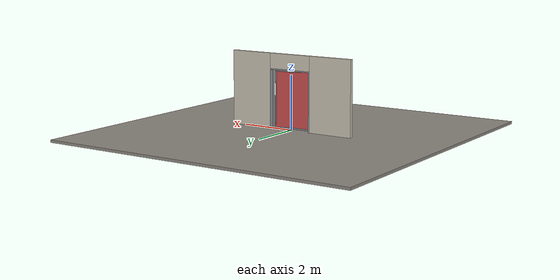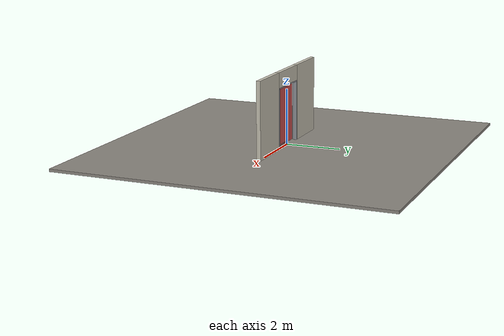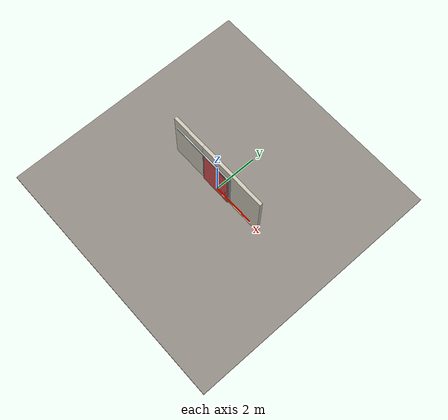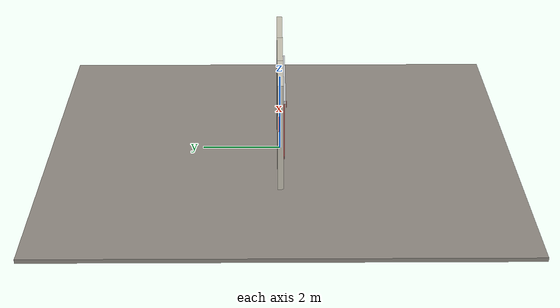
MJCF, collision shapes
<?xml version="1.0" ?>
<mujoco model="db0581_sliding_single_full">
  <compiler angle="radian" meshdir="../../hardware" texturedir="../../textures" autolimits="true" inertiafromgeom="false"/>
  <option timestep="0.002" integrator="implicitfast" cone="elliptic" impratio="10" noslip_iterations="3">
    <flag multiccd="enable"/>
  </option>
  <size memory="16M"/>
  <default>
    <geom condim="4" solref="0.005 1" solimp="0.95 0.99 0.001"/>
    <joint solreflimit="0.005 1" solimplimit="0.95 0.99 0.001"/>
    <tendon solreflimit="0.005 1"/>
    <equality solref="0.002 1"/>
  </default>
  <visual>
    <headlight ambient="0.4 0.4 0.4" diffuse="0.7 0.7 0.7" specular="0.2 0.2 0.2"/>
    <quality shadowsize="4096"/>
    <map znear="0.01" zfar="60"/>
  </visual>
  <asset>
    <mesh name="pull_1e5d69a91a" file="pull_1e5d69a91a.obj"/>
    <material name="mat_floor" rgba="0.55 0.53 0.5 1" specular="0.2" shininess="0.15" reflectance="0"/>
    <material name="mat_wall" rgba="0.78 0.76 0.7 1" specular="0.2" shininess="0.1" reflectance="0"/>
    <material name="mat_frame" rgba="0.55 0.56 0.58 1" specular="0.8" shininess="0.55" reflectance="0.4"/>
    <material name="mat_track" rgba="0.8 0.81 0.83 1" specular="0.8" shininess="0.6" reflectance="0.4"/>
    <material name="mat_leaf" rgba="0.5 0.51 0.53 1" specular="0.23" shininess="0.52" reflectance="0.02"/>
    <material name="mat_roller" rgba="0.65 0.66 0.68 1" specular="0.74" shininess="0.5" reflectance="0.36"/>
    <material name="mat_op_stainless" rgba="0.75 0.76 0.77 1" specular="0.8" shininess="0.65" reflectance="0.4"/>
    <material name="mat_hook" rgba="0.75 0.76 0.77 1" specular="0.8" shininess="0.65" reflectance="0.4"/>
    <texture name="skybox" type="skybox" builtin="gradient" rgb1="0.6 0.7 0.85" rgb2="0.9 0.92 0.95" width="256" height="256"/>
  </asset>
  <worldbody>
    <light name="sun" pos="1.5 -2.5 4" dir="-0.3 0.5 -0.8" directional="true" diffuse="0.8 0.8 0.8" specular="0.3 0.3 0.3" castshadow="true"/>
    <light name="fill" pos="-1.5 2.5 3" dir="0.3 -0.5 -0.7" directional="true" diffuse="0.35 0.35 0.4" castshadow="false"/>
    <camera name="robot_view" pos="0 -2.644375 1.817425" xyaxes="1 0 0 0 0.26963 0.962964" fovy="52"/>
    <camera name="far_view" pos="0 2.644375 1.817425" xyaxes="-1 0 0 0 -0.26963 0.962964" fovy="52"/>
    <camera name="iso" pos="2.009725 -2.221275 2.240525" xyaxes="0.741536 0.670913 0 -0.242917 0.268487 0.932151" fovy="46"/>
    <camera name="detail_handle" pos="0.84 -0.9775 1.23" xyaxes="0.97561 0.219512 0 -0.070934 0.315262 0.94635" fovy="38"/>
    <geom name="floor" type="box" size="6 6 0.05" pos="0 0 -0.05" material="mat_floor" group="0" contype="1" conaffinity="1" friction="0.8 0.005 0.0001" density="2400"/>
    <geom name="wall_left" type="box" size="0.8475 0.0725 1.377" pos="-1.6525 0 1.377" material="mat_wall" group="0" contype="1" conaffinity="1" friction="0.6 0.005 0.0001" density="800"/>
    <geom name="wall_right" type="box" size="0.8175 0.0725 1.377" pos="1.6825 0 1.377" material="mat_wall" group="0" contype="1" conaffinity="1" friction="0.6 0.005 0.0001" density="800"/>
    <geom name="wall_header" type="box" size="0.835 0.0725 0.2775" pos="0.03 0 2.4765" material="mat_wall" group="0" contype="1" conaffinity="1" friction="0.6 0.005 0.0001" density="800"/>
    <geom name="jamb_l" type="box" size="0.0225 0.0725 1.077" pos="-0.7825 0 1.077" material="mat_frame" group="0" contype="1" conaffinity="1" friction="0.6 0.005 0.0001" density="300"/>
    <geom name="jamb_head" type="box" size="0.805 0.0725 0.0225" pos="0 0 2.1765" material="mat_frame" group="0" contype="1" conaffinity="1" friction="0.6 0.005 0.0001" density="300"/>
    <geom name="track_header" type="box" size="1.55 0.025 0.04" pos="-0.75 -0.105 2.239" material="mat_track" group="0" contype="1" conaffinity="1" friction="0.6 0.005 0.0001" density="2700"/>
    <geom name="jamb_latch_0" type="box" size="0.0525 0.0725 1.077" pos="0.8125 0 1.077" material="mat_frame" group="0" contype="1" conaffinity="1" friction="0.6 0.005 0.0001" density="300"/>
    <geom name="track_header_bracket" type="box" size="1.24 0.00425 0.032" pos="-0.75 -0.07625 2.239" material="mat_hook" group="1" contype="0" conaffinity="0" density="7850"/>
    <site name="approach_point" pos="0 -1.5 0" quat="1 0 0 0" size="0.05" rgba="0.2 0.9 0.2 0.5" group="4"/>
    <site name="goal_point" pos="0 1.5 0" quat="1 0 0 0" size="0.05" rgba="0.2 0.9 0.2 0.5" group="4"/>
    <site name="door_plane_center" pos="0 0 1.077" quat="1 0 0 0" size="0.02" rgba="0.2 0.9 0.2 0.5" group="4"/>
    <body name="leaf" pos="0 -0.105 0">
      <inertial pos="0.00212 -0.000202 1.084694" mass="139.383325" quat="0.500212 0.500527 0.499437 -0.499823" diaginertia="26.422865583 53.348945549 79.753553749"/>
      <joint name="leaf_slide" type="slide" axis="-1 0 0" limited="true" range="0 1.5" damping="8.969166" frictionloss="27.33767" armature="0.5"/>
      <geom name="leaf_slab_col" type="box" size="0.75 0.0125 1.067" pos="0 0 1.079" material="mat_leaf" group="3" contype="1" conaffinity="1" rgba="0.8 0.3 0.3 0.25" friction="0.45 0.005 0.0001" density="1"/>
      <geom name="leaf_rail_b" type="box" size="0.75 0.0125 0.03" pos="0 0 0.042" material="mat_leaf" group="1" contype="0" conaffinity="0" density="1"/>
      <geom name="leaf_rail_t" type="box" size="0.75 0.0125 0.03" pos="0 0 2.116" material="mat_leaf" group="1" contype="0" conaffinity="0" density="1"/>
      <geom name="leaf_stile_h" type="box" size="0.03 0.0125 1.067" pos="-0.72 0 1.079" material="mat_leaf" group="1" contype="0" conaffinity="0" density="1"/>
      <geom name="leaf_stile_l" type="box" size="0.03 0.0125 1.067" pos="0.72 0 1.079" material="mat_leaf" group="1" contype="0" conaffinity="0" density="1"/>
      <geom name="leaf_bar_0" type="cylinder" size="0.0095 1.007" pos="-0.621 0 1.079" material="mat_leaf" group="1" contype="0" conaffinity="0" density="1"/>
      <geom name="leaf_bar_1" type="cylinder" size="0.0095 1.007" pos="-0.483 0 1.079" material="mat_leaf" group="1" contype="0" conaffinity="0" density="1"/>
      <geom name="leaf_bar_2" type="cylinder" size="0.0095 1.007" pos="-0.345 0 1.079" material="mat_leaf" group="1" contype="0" conaffinity="0" density="1"/>
      <geom name="leaf_bar_3" type="cylinder" size="0.0095 1.007" pos="-0.207 0 1.079" material="mat_leaf" group="1" contype="0" conaffinity="0" density="1"/>
      <geom name="leaf_bar_4" type="cylinder" size="0.0095 1.007" pos="-0.069 0 1.079" material="mat_leaf" group="1" contype="0" conaffinity="0" density="1"/>
      <geom name="leaf_bar_5" type="cylinder" size="0.0095 1.007" pos="0.069 0 1.079" material="mat_leaf" group="1" contype="0" conaffinity="0" density="1"/>
      <geom name="leaf_bar_6" type="cylinder" size="0.0095 1.007" pos="0.207 0 1.079" material="mat_leaf" group="1" contype="0" conaffinity="0" density="1"/>
      <geom name="leaf_bar_7" type="cylinder" size="0.0095 1.007" pos="0.345 0 1.079" material="mat_leaf" group="1" contype="0" conaffinity="0" density="1"/>
      <geom name="leaf_bar_8" type="cylinder" size="0.0095 1.007" pos="0.483 0 1.079" material="mat_leaf" group="1" contype="0" conaffinity="0" density="1"/>
      <geom name="leaf_bar_9" type="cylinder" size="0.0095 1.007" pos="0.621 0 1.079" material="mat_leaf" group="1" contype="0" conaffinity="0" density="1"/>
      <geom name="leaf_crossbar_33" type="box" size="0.69 0.01 0.02" pos="0 0 0.71622" material="mat_leaf" group="1" contype="0" conaffinity="0" density="1"/>
      <geom name="leaf_crossbar_66" type="box" size="0.69 0.01 0.02" pos="0 0 1.42044" material="mat_leaf" group="1" contype="0" conaffinity="0" density="1"/>
      <geom name="leaf_carrier_0" type="box" size="0.02 0.005 0.0545" pos="-0.63 0 2.1405" material="mat_roller" group="1" contype="0" conaffinity="0" density="7850"/>
      <geom name="leaf_carrier_wheel_0" type="cylinder" size="0.014 0.006" pos="-0.63 0 2.185" quat="0.707107 -0.707107 0 0" material="mat_roller" group="1" contype="0" conaffinity="0" density="7850"/>
      <geom name="leaf_carrier_1" type="box" size="0.02 0.005 0.0545" pos="0.63 0 2.1405" material="mat_roller" group="1" contype="0" conaffinity="0" density="7850"/>
      <geom name="leaf_carrier_wheel_1" type="cylinder" size="0.014 0.006" pos="0.63 0 2.185" quat="0.707107 -0.707107 0 0" material="mat_roller" group="1" contype="0" conaffinity="0" density="7850"/>
      <geom name="leaf_pull_n" type="mesh" mesh="pull_1e5d69a91a" pos="0.66 -0.0125 0.95" quat="0.707107 0.707107 0 0" material="mat_op_stainless" group="1" contype="0" conaffinity="0" density="3000"/>
      <geom name="leaf_pull_col_n" type="capsule" size="0.0095 0.08" pos="0.66 -0.0725 0.95" material="mat_op_stainless" group="3" contype="1" conaffinity="1" rgba="0.8 0.3 0.3 0.25" friction="0.7 0.01 0.0001" density="3000"/>
      <site name="leaf_pull_grip_n" pos="0.66 -0.0725 0.95" quat="1 0 0 0" size="0.012" rgba="0.2 0.9 0.2 0.5" group="4"/>
      <site name="leaf_edge_mid" pos="0.75 0 1.079" quat="1 0 0 0" size="0.02" rgba="0.2 0.9 0.2 0.5" group="4"/>
    </body>
  </worldbody>
  <sensor>
    <jointpos name="leaf_slide_pos" joint="leaf_slide"/>
    <jointvel name="leaf_slide_vel" joint="leaf_slide"/>
  </sensor>
</mujoco>
